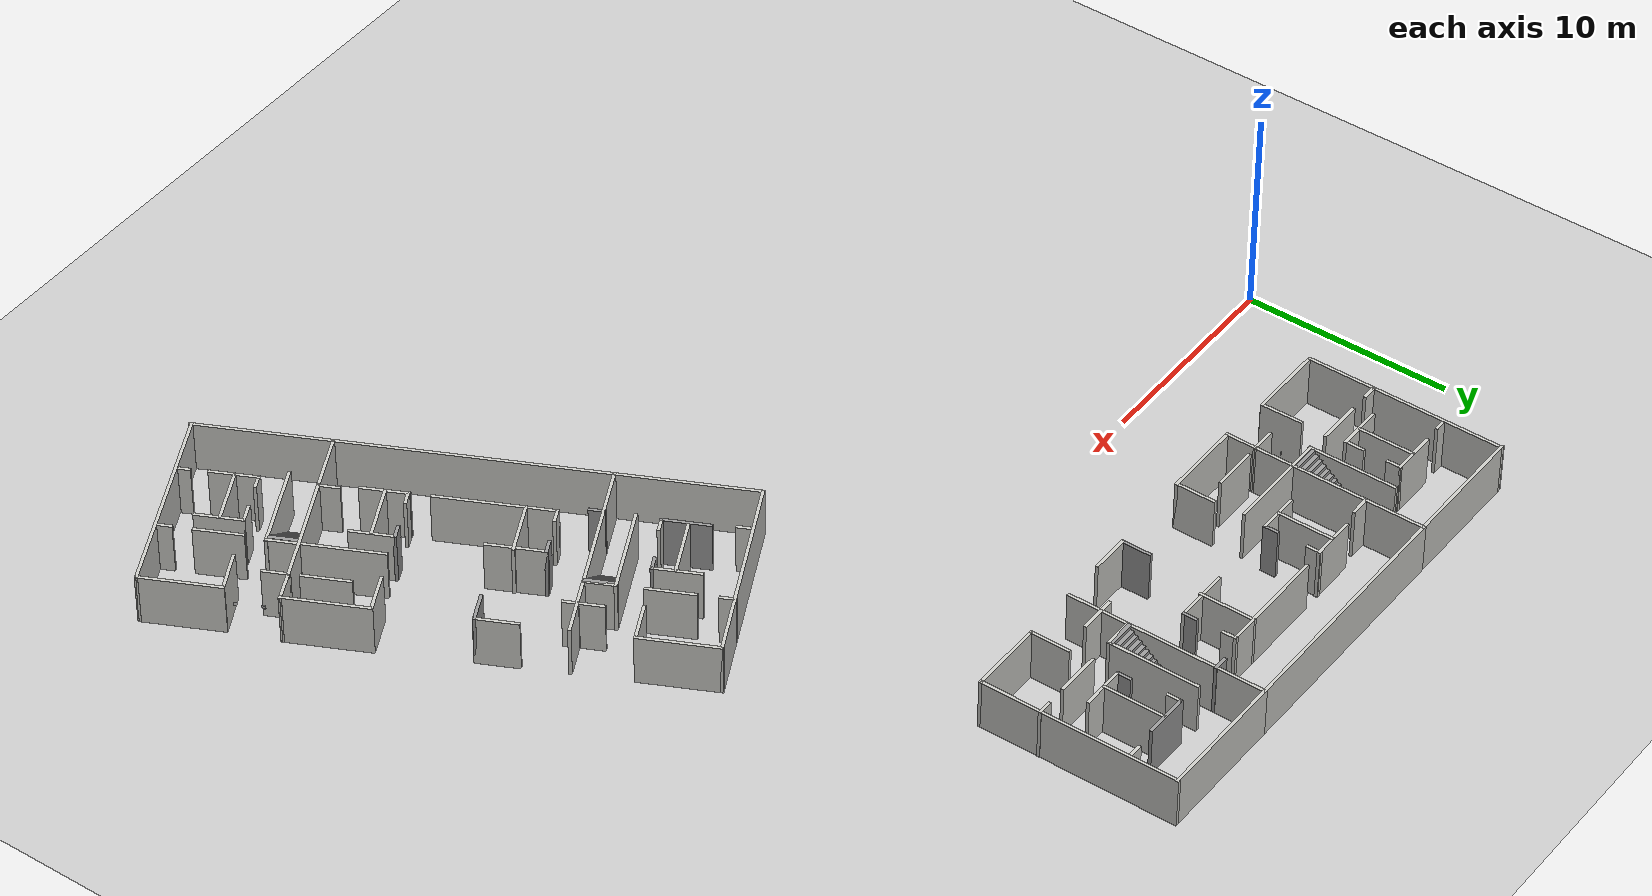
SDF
<sdf version="1.5">
 <world name="default">
  <scene>
   <ambient>0.2 0.2 0.2 1.0</ambient>
   <grid>false</grid>
   <sky><clouds><speed>4</speed></clouds></sky>
  </scene>
  <include><uri>model://ground_plane</uri><size>200 200</size></include>
  <include><uri>model://sun</uri></include>
  <include><uri>model://shelby_building_a</uri><name>bldg_a_1</name><pose>16.5 10 0 0 0 1.5707</pose></include>
  <include>
   <uri>model://Apriltag36_11_00004</uri>
   <name>bldg_a_1_right_tag</name>
   <pose>9.35 6.8 0.5 1.5707 1.5707 0</pose>
   <scale>0.25 0.25 0.25</scale>
  </include>
  <include>
   <uri>model://Apriltag36_11_00003</uri>
   <name>bldg_a_1_left_tag</name>
   <pose>8.1 6.8 0.5 0.75 1.5707 0</pose>
   <scale>0.25 0.25 0.25</scale>
  </include>
  <include><uri>model://shelby_building_a</uri><name>bldg_a_2</name><pose>35 -17 0 0 0 3.6</pose></include>
  <physics type="ode">
   <max_step_size>0.001</max_step_size>
   <real_time_factor>1</real_time_factor>
   <real_time_update_rate>1000</real_time_update_rate>
   <gravity>0 0 -9.8</gravity>
  </physics>
 </world>
</sdf>

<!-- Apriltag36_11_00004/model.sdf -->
<sdf version='1.6'>
  <model name='Apriltag36_11_00004'>
    <link name='main'>
    <pose frame=''>0 0 0 0 0 0</pose>
      <visual name='main_Visual'>
        <geometry>
          <box>
          <size>0.165 0.165 0.01</size>
          </box>
        </geometry>
           <material>
          <script>
            <uri>model://Apriltag36_11_00004/materials/scripts</uri>
            <uri>model://Apriltag36_11_00004/materials/textures</uri>
            <name>Apriltag36_11_00004</name>
          </script>
        </material>
      </visual>
     </link>
    <static>1</static>
  </model>
</sdf>

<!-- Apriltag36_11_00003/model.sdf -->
<sdf version='1.6'>
  <model name='Apriltag36_11_00003'>
    <link name='main'>
    <pose frame=''>0 0 0 0 0 0</pose>
      <visual name='main_Visual'>
        <geometry>
          <box>
          <size>0.165 0.165 0.01</size>
          </box>
        </geometry>
           <material>
          <script>
            <uri>model://Apriltag36_11_00003/materials/scripts</uri>
            <uri>model://Apriltag36_11_00003/materials/textures</uri>
            <name>Apriltag36_11_00003</name>
          </script>
        </material>
      </visual>
     </link>
    <static>1</static>
  </model>
</sdf>
